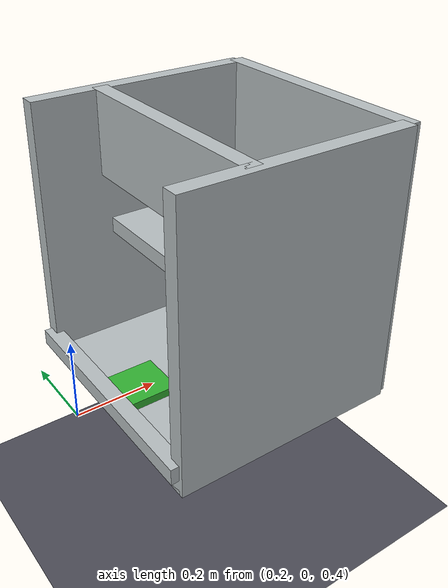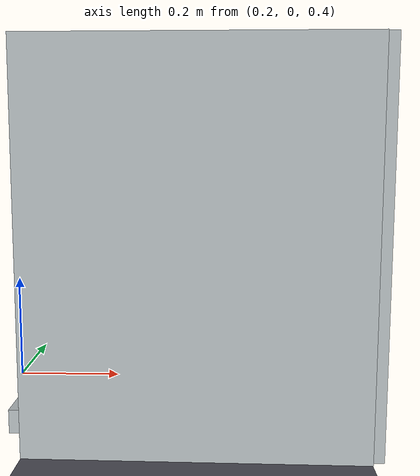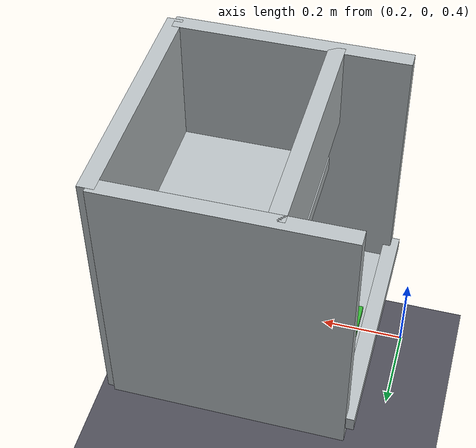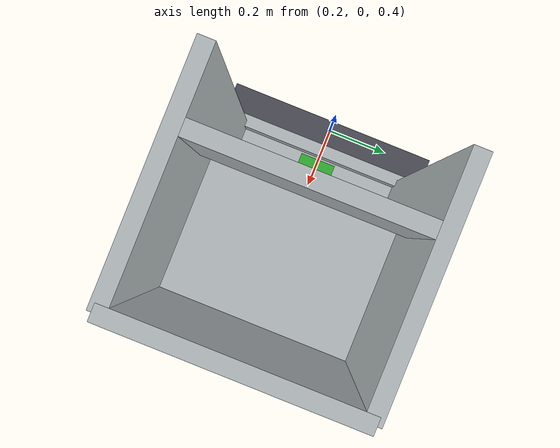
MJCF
<mujoco model="fridge_two_level_v2_blind">
  <compiler angle="radian" autolimits="true" boundmass="0" balanceinertia="true"/>
  <option impratio="10" gravity="0 0 -9.8" integrator="implicitfast" cone="elliptic" jacobian="sparse" noslip_iterations="4">
    <flag multiccd="enable" contact="enable" warmstart="enable"/>
  </option>
  <size njmax="5000" nconmax="5000"/>
  <visual>
    <global offwidth="1280" offheight="720"/>
    <map znear="0.001"/>
    <headlight ambient="0.45 0.45 0.45" diffuse="0.6 0.6 0.6"/>
  </visual>
  <default>
    <default class="cavity_struct">
      <geom contype="8" conaffinity="15" group="0" friction="0.9 0.9 0.001"
            solref="0.02 1" solimp="0.998 0.998 0.001" density="800" rgba="0.72 0.75 0.76 1"/>
    </default>
  </default>
  <worldbody>
    <light pos="0.5 0.5 3" dir="0 0 -1" diffuse="0.7 0.7 0.7"/>
    <geom name="floor" type="plane" size="5 5 0.1" pos="0 0 0" rgba="0.3 0.3 0.34 1"/>

    <body name="fridge" pos="0 0 0">
      <geom name="cab_floor" class="cavity_struct" type="box" pos="0.57 0 0.38" size="0.29 0.30 0.02"/>
      <geom name="cab_mid" class="cavity_struct" type="box" pos="0.66 0 0.70" size="0.20 0.30 0.02"/>
      <geom name="cab_back" class="cavity_struct" type="box" pos="0.86 0 0.705" size="0.02 0.30 0.345"/>
      <geom name="cab_left" class="cavity_struct" type="box" pos="0.57 0.29 0.705" size="0.29 0.02 0.345"/>
      <geom name="cab_right" class="cavity_struct" type="box" pos="0.57 -0.29 0.705" size="0.29 0.02 0.345"/>
      <geom name="cab_lower_lip" class="cavity_struct" type="box" pos="0.28 0 0.42" size="0.02 0.30 0.02"/>
      <geom name="cab_upper_visor" class="cavity_struct" type="box" pos="0.46 0 0.945" size="0.02 0.29 0.105"/>
    </body>

    <body name="place_pad" pos="0.37 0 0.41">
      <geom name="place_pad" type="box" size="0.06 0.06 0.01"
            rgba="0.2 0.7 0.2 1" contype="8" conaffinity="15" group="0"
            friction="1.0 0.9 0.001" solref="0.02 1" solimp="0.998 0.998 0.001" density="800"/>
    </body>
  </worldbody>
</mujoco>
